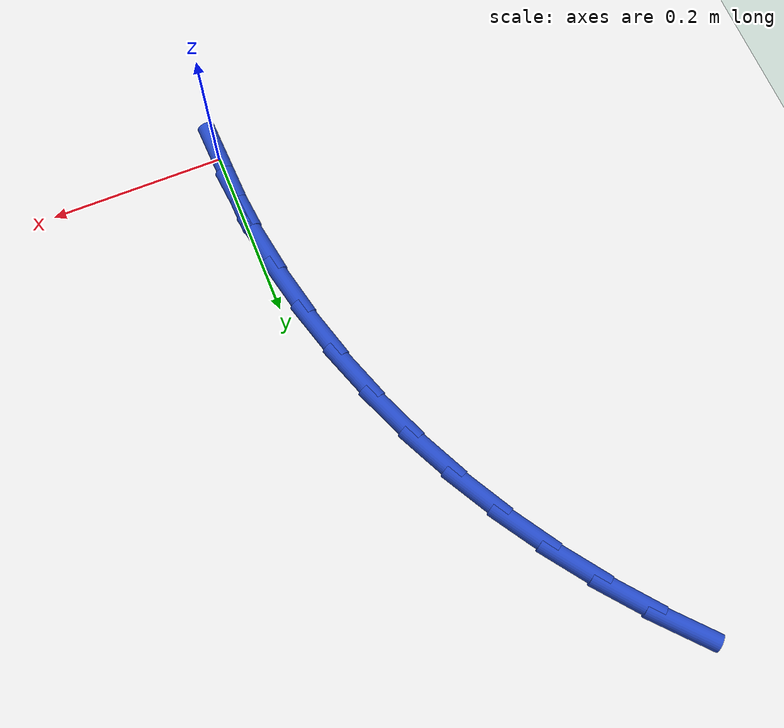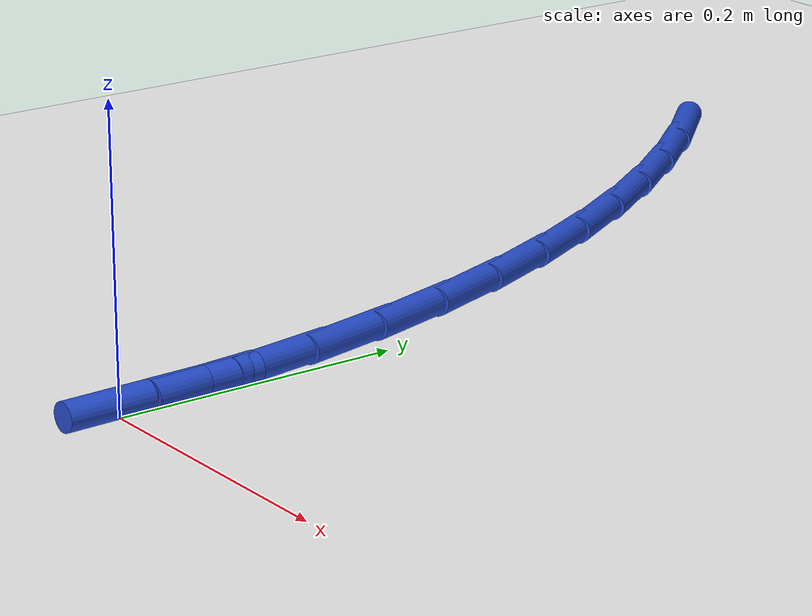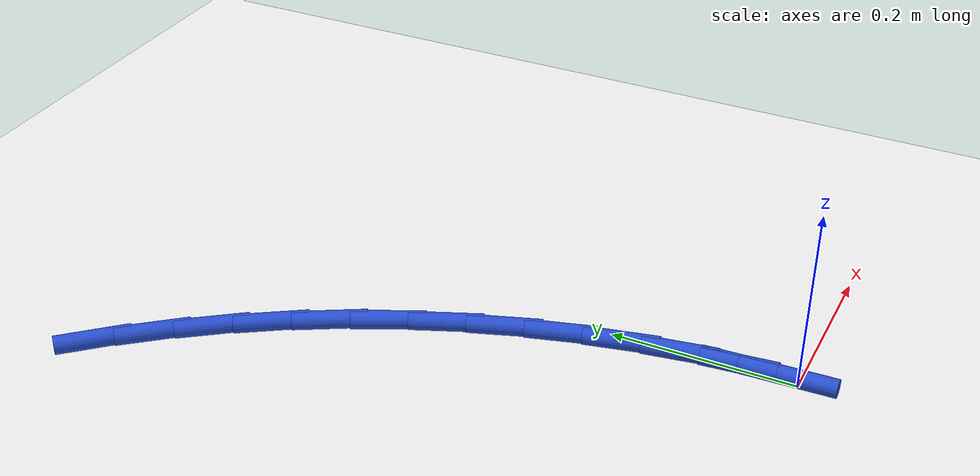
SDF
<sdf version="1.6">
 <world name="default">
  <model name="ground_plane">
   <static>1</static>
   <link name="link">
    <collision name="collision">
     <geometry><plane><normal>0 0 1</normal><size>100 100</size></plane></geometry>
     <surface><friction><ode><mu>100</mu><mu2>50</mu2></ode></friction></surface>
    </collision>
    <visual name="visual">
     <cast_shadows>0</cast_shadows>
     <geometry><plane><normal>0 0 1</normal><size>100 100</size></plane></geometry>
     <material>
      <script><uri>file://media/materials/scripts/gazebo.material</uri><name>Gazebo/WhiteGlow</name></script>
     </material>
    </visual>
   </link>
  </model>
  <model name="line">
   <link name="link_1">
    <pose>-0.0021307107891015723 0.06140762726737674 0.01 0 1.57 -1.473699927364441</pose>
    <collision name="collision">
     <geometry><cylinder><radius>0.01</radius><length>0.08</length></cylinder></geometry>
    </collision>
    <visual name="visual">
     <material>
      <script><name>Gazebo/Blue</name><uri>file://media/materials/scripts/gazebo.material</uri></script>
     </material>
     <geometry><cylinder><radius>0.01</radius><length>0.08</length></cylinder></geometry>
    </visual>
   </link>
   <link name="link_2">
    <pose>-0.008081782505786896 0.12250524083148308 0.01 0 1.57 -1.4123681365861918</pose>
    <collision name="collision">
     <geometry><cylinder><radius>0.01</radius><length>0.08</length></cylinder></geometry>
    </collision>
    <visual name="visual">
     <material>
      <script><name>Gazebo/Blue</name><uri>file://media/materials/scripts/gazebo.material</uri></script>
     </material>
     <geometry><cylinder><radius>0.01</radius><length>0.08</length></cylinder></geometry>
    </visual>
   </link>
   <link name="link_3">
    <pose>-0.017762079191228165 0.18309528261997998 0.01 0 1.57 -1.3519582734054236</pose>
    <collision name="collision">
     <geometry><cylinder><radius>0.01</radius><length>0.08</length></cylinder></geometry>
    </collision>
    <visual name="visual">
     <material>
      <script><name>Gazebo/Blue</name><uri>file://media/materials/scripts/gazebo.material</uri></script>
     </material>
     <geometry><cylinder><radius>0.01</radius><length>0.08</length></cylinder></geometry>
    </visual>
   </link>
   <link name="link_4">
    <pose>-0.03108046488659759 0.24298019456052838 0.01 0 1.57 -1.2922886026667961</pose>
    <collision name="collision">
     <geometry><cylinder><radius>0.01</radius><length>0.08</length></cylinder></geometry>
    </collision>
    <visual name="visual">
     <material>
      <script><name>Gazebo/Blue</name><uri>file://media/materials/scripts/gazebo.material</uri></script>
     </material>
     <geometry><cylinder><radius>0.01</radius><length>0.08</length></cylinder></geometry>
    </visual>
   </link>
   <link name="link_5">
    <pose>-0.04794580363306744 0.30196241858078954 0.01 0 1.57 -1.2331604472770012</pose>
    <collision name="collision">
     <geometry><cylinder><radius>0.01</radius><length>0.08</length></cylinder></geometry>
    </collision>
    <visual name="visual">
     <material>
      <script><name>Gazebo/Blue</name><uri>file://media/materials/scripts/gazebo.material</uri></script>
     </material>
     <geometry><cylinder><radius>0.01</radius><length>0.08</length></cylinder></geometry>
    </visual>
   </link>
   <link name="link_6">
    <pose>-0.06826695947180987 0.35984439660842427 0.01 0 1.57 -1.1743634862494134</pose>
    <collision name="collision">
     <geometry><cylinder><radius>0.01</radius><length>0.08</length></cylinder></geometry>
    </collision>
    <visual name="visual">
     <material>
      <script><name>Gazebo/Blue</name><uri>file://media/materials/scripts/gazebo.material</uri></script>
     </material>
     <geometry><cylinder><radius>0.01</radius><length>0.08</length></cylinder></geometry>
    </visual>
   </link>
   <link name="link_7">
    <pose>-0.09195279644399712 0.4164285705710936 0.01 0 1.57 -1.1156804713878161</pose>
    <collision name="collision">
     <geometry><cylinder><radius>0.01</radius><length>0.08</length></cylinder></geometry>
    </collision>
    <visual name="visual">
     <material>
      <script><name>Gazebo/Blue</name><uri>file://media/materials/scripts/gazebo.material</uri></script>
     </material>
     <geometry><cylinder><radius>0.01</radius><length>0.08</length></cylinder></geometry>
    </visual>
   </link>
   <link name="link_8">
    <pose>-0.11891217859080148 0.47151738239645885 0.01 0 1.57 -1.0568915677870647</pose>
    <collision name="collision">
     <geometry><cylinder><radius>0.01</radius><length>0.08</length></cylinder></geometry>
    </collision>
    <visual name="visual">
     <material>
      <script><name>Gazebo/Blue</name><uri>file://media/materials/scripts/gazebo.material</uri></script>
     </material>
     <geometry><cylinder><radius>0.01</radius><length>0.08</length></cylinder></geometry>
    </visual>
   </link>
   <link name="link_9">
    <pose>-0.14905396995339504 0.5249132740121806 0.01 0 1.57 -0.9979112509511202</pose>
    <collision name="collision">
     <geometry><cylinder><radius>0.01</radius><length>0.08</length></cylinder></geometry>
    </collision>
    <visual name="visual">
     <material>
      <script><name>Gazebo/Blue</name><uri>file://media/materials/scripts/gazebo.material</uri></script>
     </material>
     <geometry><cylinder><radius>0.01</radius><length>0.08</length></cylinder></geometry>
    </visual>
   </link>
   <link name="link_10">
    <pose>-0.18228200062415117 0.576425888011988 0.01 0 1.57 -0.9399430029208447</pose>
    <collision name="collision">
     <geometry><cylinder><radius>0.01</radius><length>0.08</length></cylinder></geometry>
    </collision>
    <visual name="visual">
     <material>
      <script><name>Gazebo/Blue</name><uri>file://media/materials/scripts/gazebo.material</uri></script>
     </material>
     <geometry><cylinder><radius>0.01</radius><length>0.08</length></cylinder></geometry>
    </visual>
   </link>
   <link name="link_11">
    <pose>-0.21844789178359242 0.6259395477134299 0.01 0 1.57 -0.8837140247264864</pose>
    <collision name="collision">
     <geometry><cylinder><radius>0.01</radius><length>0.08</length></cylinder></geometry>
    </collision>
    <visual name="visual">
     <material>
      <script><name>Gazebo/Blue</name><uri>file://media/materials/scripts/gazebo.material</uri></script>
     </material>
     <geometry><cylinder><radius>0.01</radius><length>0.08</length></cylinder></geometry>
    </visual>
   </link>
   <link name="link_12">
    <pose>-0.2573723544334624 0.6733827910028495 0.01 0 1.57 -0.829130283223131</pose>
    <collision name="collision">
     <geometry><cylinder><radius>0.01</radius><length>0.08</length></cylinder></geometry>
    </collision>
    <visual name="visual">
     <material>
      <script><name>Gazebo/Blue</name><uri>file://media/materials/scripts/gazebo.material</uri></script>
     </material>
     <geometry><cylinder><radius>0.01</radius><length>0.08</length></cylinder></geometry>
    </visual>
   </link>
   <link name="link_110">
    <pose>-6.938893903907228e-18 2.7755575615628914e-17 0.01 0 1.57 -1.5356829085204566</pose>
    <collision name="collision">
     <geometry><cylinder><radius>0.01</radius><length>0.08</length></cylinder></geometry>
    </collision>
    <visual name="visual">
     <material>
      <script><name>Gazebo/Blue</name><uri>file://media/materials/scripts/gazebo.material</uri></script>
     </material>
     <geometry><cylinder><radius>0.01</radius><length>0.08</length></cylinder></geometry>
    </visual>
   </link>
   <link name="link_111">
    <pose>-0.0021566936096245014 0.06139553697793931 0.01 0 1.57 -1.5356829085204564</pose>
    <collision name="collision">
     <geometry><cylinder><radius>0.01</radius><length>0.08</length></cylinder></geometry>
    </collision>
    <visual name="visual">
     <material>
      <script><name>Gazebo/Blue</name><uri>file://media/materials/scripts/gazebo.material</uri></script>
     </material>
     <geometry><cylinder><radius>0.01</radius><length>0.08</length></cylinder></geometry>
    </visual>
   </link>
  </model>
 </world>
</sdf>
